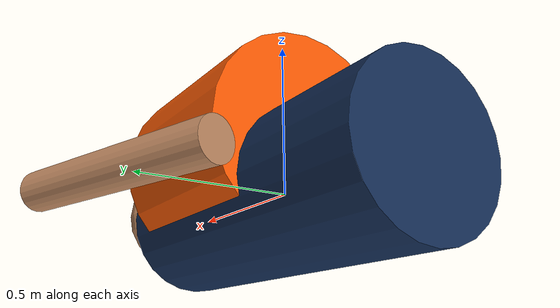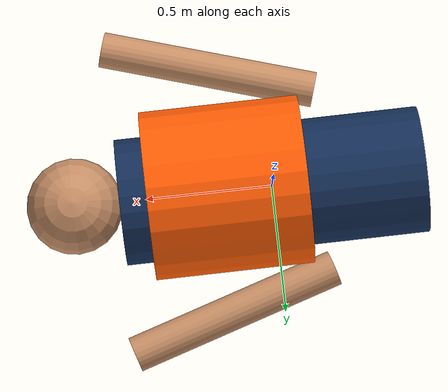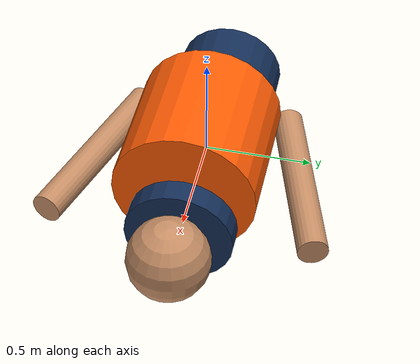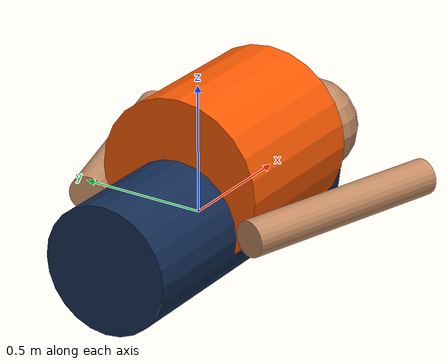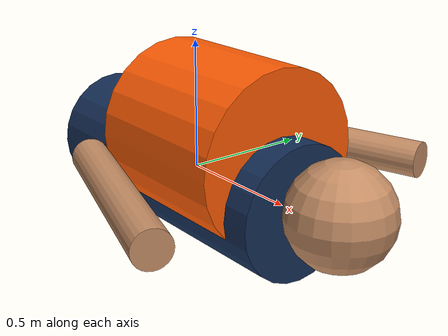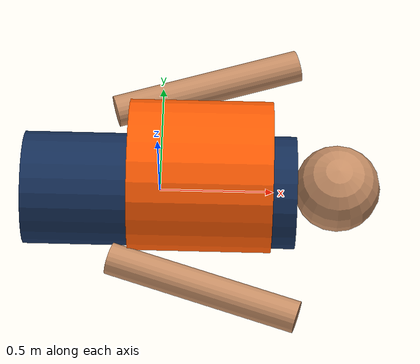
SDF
<?xml version="1.0"?>
<sdf version="1.10"><model name="person_overboard"><link name="person">
  <inertial><mass>78</mass><inertia><ixx>12</ixx><iyy>18</iyy><izz>8</izz></inertia></inertial>
  <collision name="torso_collision"><pose>0 0 0 0 1.5708 0</pose><geometry><cylinder><radius>0.28</radius><length>1.25</length></cylinder></geometry></collision>
  <visual name="body"><pose>0 0 0 0 1.5708 0</pose><geometry><cylinder><radius>0.25</radius><length>1.2</length></cylinder></geometry><material><ambient>0.05 0.09 0.16 1</ambient><diffuse>0.08 0.18 0.34 1</diffuse></material></visual>
  <visual name="life_jacket"><pose>0.18 0 0.16 0 1.5708 0</pose><geometry><cylinder><radius>0.33</radius><length>0.62</length></cylinder></geometry><material><ambient>0.9 0.2 0.01 1</ambient><diffuse>1 0.36 0.015 1</diffuse><emissive>0.12 0.025 0 1</emissive></material></visual>
  <visual name="head"><pose>0.78 0 0.06 0 0 0</pose><geometry><sphere><radius>0.19</radius></sphere></geometry><material><ambient>0.58 0.39 0.27 1</ambient><diffuse>0.78 0.56 0.4 1</diffuse></material></visual>
  <visual name="left_arm"><pose>0.2 0.48 0.06 0 1.5708 0.3</pose><geometry><cylinder><radius>0.07</radius><length>0.85</length></cylinder></geometry><material><ambient>0.58 0.39 0.27 1</ambient><diffuse>0.78 0.56 0.4 1</diffuse></material></visual>
  <visual name="right_arm"><pose>0.2 -0.48 0.06 0 1.5708 -0.3</pose><geometry><cylinder><radius>0.07</radius><length>0.85</length></cylinder></geometry><material><ambient>0.58 0.39 0.27 1</ambient><diffuse>0.78 0.56 0.4 1</diffuse></material></visual>
  </link><plugin filename="libBoatWaveFollower.so" name="gz::sim::systems::BoatWaveFollower"><mean_z>0.08</mean_z><heave_amplitude>0.1</heave_amplitude><roll_amplitude>0.08</roll_amplitude><pitch_amplitude>0.07</pitch_amplitude><primary_frequency>0.9</primary_frequency><secondary_frequency>1.4</secondary_frequency></plugin></model></sdf>
